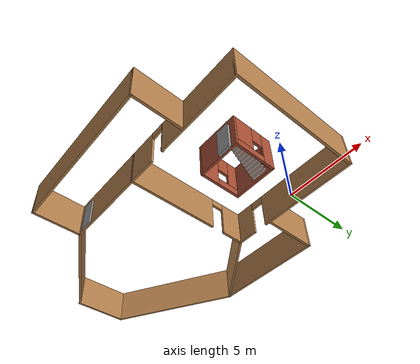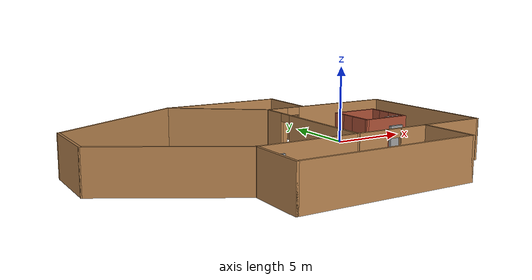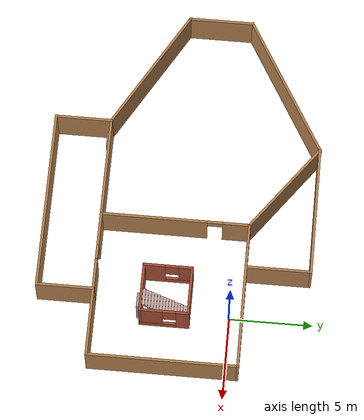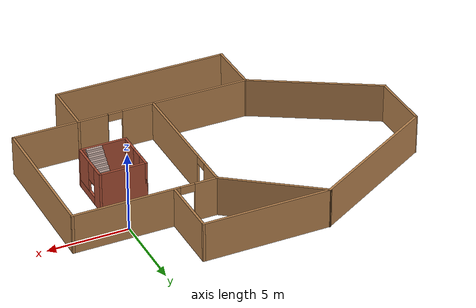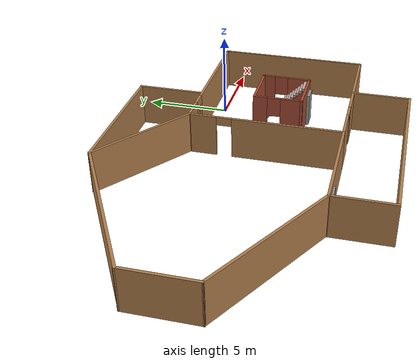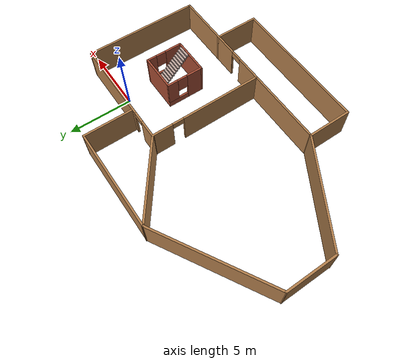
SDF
<?xml version='1.0'?>
<sdf version='1.6'>
  <model name='Building'>
    <pose frame=''>-7.3732 -3.38802 0 0 -0 0</pose>
    <link name='Door_1'>
      <collision name='Door_1_Collision'>
        <geometry>
          <box>
            <size>0.9 0.17 2</size>
          </box>
        </geometry>
        <pose frame=''>0 0 1 0 -0 0</pose>
      </collision>
      <visual name='Door_1_Visual'>
        <pose frame=''>0 0 1 0 -0 0</pose>
        <geometry>
          <box>
            <size>0.9 0.17 2</size>
          </box>
        </geometry>
        <material>
          <script>
            <uri>file://media/materials/scripts/gazebo.material</uri>
            <name>Gazebo/Grey</name>
          </script>
        </material>
      </visual>
      <pose frame=''>-2.80708 -4.7902 0 0 -0 0</pose>
    </link>
    <link name='Door_4'>
      <collision name='Door_4_Collision'>
        <geometry>
          <box>
            <size>0.9 0.17 2</size>
          </box>
        </geometry>
        <pose frame=''>0 0 1 0 -0 0</pose>
      </collision>
      <visual name='Door_4_Visual'>
        <pose frame=''>0 0 1 0 -0 0</pose>
        <geometry>
          <box>
            <size>0.9 0.17 2</size>
          </box>
        </geometry>
        <material>
          <script>
            <uri>file://media/materials/scripts/gazebo.material</uri>
            <name>Gazebo/Grey</name>
          </script>
        </material>
      </visual>
      <pose frame=''>7.32441 -2.01108 0 0 -0 0</pose>
    </link>
    <link name='Stairs_0'>
      <visual name='Stairs_0_Visual_0'>
        <pose frame=''>7.28923 0.709279 0.083333 0 -0 0</pose>
        <geometry>
          <box>
            <size>1 0.170012 0.166667</size>
          </box>
        </geometry>
        <material>
          <script>
            <uri>file://media/materials/scripts/gazebo.material</uri>
            <name>Gazebo/Grey</name>
          </script>
          <ambient>0.760784 0.662745 0.627451 1</ambient>
        </material>
        <meta>
          <layer>0</layer>
        </meta>
      </visual>
      <collision name='Stairs_0_Collision_0'>
        <geometry>
          <box>
            <size>1 0.170012 0.166667</size>
          </box>
        </geometry>
        <pose frame=''>7.28923 0.709279 0.083333 0 -0 0</pose>
      </collision>
      <visual name='Stairs_0_Visual_1'>
        <pose frame=''>7.28923 0.539268 0.25 0 -0 0</pose>
        <geometry>
          <box>
            <size>1 0.170012 0.166667</size>
          </box>
        </geometry>
        <material>
          <script>
            <uri>file://media/materials/scripts/gazebo.material</uri>
            <name>Gazebo/Grey</name>
          </script>
          <ambient>0.760784 0.662745 0.627451 1</ambient>
        </material>
        <meta>
          <layer>0</layer>
        </meta>
      </visual>
      <collision name='Stairs_0_Collision_1'>
        <geometry>
          <box>
            <size>1 0.170012 0.166667</size>
          </box>
        </geometry>
        <pose frame=''>7.28923 0.539268 0.25 0 -0 0</pose>
      </collision>
      <visual name='Stairs_0_Visual_2'>
        <pose frame=''>7.28923 0.369256 0.416667 0 -0 0</pose>
        <geometry>
          <box>
            <size>1 0.170012 0.166667</size>
          </box>
        </geometry>
        <material>
          <script>
            <uri>file://media/materials/scripts/gazebo.material</uri>
            <name>Gazebo/Grey</name>
          </script>
          <ambient>0.760784 0.662745 0.627451 1</ambient>
        </material>
        <meta>
          <layer>0</layer>
        </meta>
      </visual>
      <collision name='Stairs_0_Collision_2'>
        <geometry>
          <box>
            <size>1 0.170012 0.166667</size>
          </box>
        </geometry>
        <pose frame=''>7.28923 0.369256 0.416667 0 -0 0</pose>
      </collision>
      <visual name='Stairs_0_Visual_3'>
        <pose frame=''>7.28923 0.199244 0.583333 0 -0 0</pose>
        <geometry>
          <box>
            <size>1 0.170012 0.166667</size>
          </box>
        </geometry>
        <material>
          <script>
            <uri>file://media/materials/scripts/gazebo.material</uri>
            <name>Gazebo/Grey</name>
          </script>
          <ambient>0.760784 0.662745 0.627451 1</ambient>
        </material>
        <meta>
          <layer>0</layer>
        </meta>
      </visual>
      <collision name='Stairs_0_Collision_3'>
        <geometry>
          <box>
            <size>1 0.170012 0.166667</size>
          </box>
        </geometry>
        <pose frame=''>7.28923 0.199244 0.583333 0 -0 0</pose>
      </collision>
      <visual name='Stairs_0_Visual_4'>
        <pose frame=''>7.28923 0.029233 0.75 0 -0 0</pose>
        <geometry>
          <box>
            <size>1 0.170012 0.166667</size>
          </box>
        </geometry>
        <material>
          <script>
            <uri>file://media/materials/scripts/gazebo.material</uri>
            <name>Gazebo/Grey</name>
          </script>
          <ambient>0.760784 0.662745 0.627451 1</ambient>
        </material>
        <meta>
          <layer>0</layer>
        </meta>
      </visual>
      <collision name='Stairs_0_Collision_4'>
        <geometry>
          <box>
            <size>1 0.170012 0.166667</size>
          </box>
        </geometry>
        <pose frame=''>7.28923 0.029233 0.75 0 -0 0</pose>
      </collision>
      <visual name='Stairs_0_Visual_5'>
        <pose frame=''>7.28923 -0.140779 0.916667 0 -0 0</pose>
        <geometry>
          <box>
            <size>1 0.170012 0.166667</size>
          </box>
        </geometry>
        <material>
          <script>
            <uri>file://media/materials/scripts/gazebo.material</uri>
            <name>Gazebo/Grey</name>
          </script>
          <ambient>0.760784 0.662745 0.627451 1</ambient>
        </material>
        <meta>
          <layer>0</layer>
        </meta>
      </visual>
      <collision name='Stairs_0_Collision_5'>
        <geometry>
          <box>
            <size>1 0.170012 0.166667</size>
          </box>
        </geometry>
        <pose frame=''>7.28923 -0.140779 0.916667 0 -0 0</pose>
      </collision>
      <visual name='Stairs_0_Visual_6'>
        <pose frame=''>7.28923 -0.31079 1.08333 0 -0 0</pose>
        <geometry>
          <box>
            <size>1 0.170012 0.166667</size>
          </box>
        </geometry>
        <material>
          <script>
            <uri>file://media/materials/scripts/gazebo.material</uri>
            <name>Gazebo/Grey</name>
          </script>
          <ambient>0.760784 0.662745 0.627451 1</ambient>
        </material>
        <meta>
          <layer>0</layer>
        </meta>
      </visual>
      <collision name='Stairs_0_Collision_6'>
        <geometry>
          <box>
            <size>1 0.170012 0.166667</size>
          </box>
        </geometry>
        <pose frame=''>7.28923 -0.31079 1.08333 0 -0 0</pose>
      </collision>
      <visual name='Stairs_0_Visual_7'>
        <pose frame=''>7.28923 -0.480802 1.25 0 -0 0</pose>
        <geometry>
          <box>
            <size>1 0.170012 0.166667</size>
          </box>
        </geometry>
        <material>
          <script>
            <uri>file://media/materials/scripts/gazebo.material</uri>
            <name>Gazebo/Grey</name>
          </script>
          <ambient>0.760784 0.662745 0.627451 1</ambient>
        </material>
        <meta>
          <layer>0</layer>
        </meta>
      </visual>
      <collision name='Stairs_0_Collision_7'>
        <geometry>
          <box>
            <size>1 0.170012 0.166667</size>
          </box>
        </geometry>
        <pose frame=''>7.28923 -0.480802 1.25 0 -0 0</pose>
      </collision>
      <visual name='Stairs_0_Visual_8'>
        <pose frame=''>7.28923 -0.650813 1.41667 0 -0 0</pose>
        <geometry>
          <box>
            <size>1 0.170012 0.166667</size>
          </box>
        </geometry>
        <material>
          <script>
            <uri>file://media/materials/scripts/gazebo.material</uri>
            <name>Gazebo/Grey</name>
          </script>
          <ambient>0.760784 0.662745 0.627451 1</ambient>
        </material>
        <meta>
          <layer>0</layer>
        </meta>
      </visual>
      <collision name='Stairs_0_Collision_8'>
        <geometry>
          <box>
            <size>1 0.170012 0.166667</size>
          </box>
        </geometry>
        <pose frame=''>7.28923 -0.650813 1.41667 0 -0 0</pose>
      </collision>
      <visual name='Stairs_0_Visual_9'>
        <pose frame=''>7.28923 -0.820825 1.58333 0 -0 0</pose>
        <geometry>
          <box>
            <size>1 0.170012 0.166667</size>
          </box>
        </geometry>
        <material>
          <script>
            <uri>file://media/materials/scripts/gazebo.material</uri>
            <name>Gazebo/Grey</name>
          </script>
          <ambient>0.760784 0.662745 0.627451 1</ambient>
        </material>
        <meta>
          <layer>0</layer>
        </meta>
      </visual>
      <collision name='Stairs_0_Collision_9'>
        <geometry>
          <box>
            <size>1 0.170012 0.166667</size>
          </box>
        </geometry>
        <pose frame=''>7.28923 -0.820825 1.58333 0 -0 0</pose>
      </collision>
      <visual name='Stairs_0_Visual_10'>
        <pose frame=''>7.28923 -0.990836 1.75 0 -0 0</pose>
        <geometry>
          <box>
            <size>1 0.170012 0.166667</size>
          </box>
        </geometry>
        <material>
          <script>
            <uri>file://media/materials/scripts/gazebo.material</uri>
            <name>Gazebo/Grey</name>
          </script>
          <ambient>0.760784 0.662745 0.627451 1</ambient>
        </material>
        <meta>
          <layer>0</layer>
        </meta>
      </visual>
      <collision name='Stairs_0_Collision_10'>
        <geometry>
          <box>
            <size>1 0.170012 0.166667</size>
          </box>
        </geometry>
        <pose frame=''>7.28923 -0.990836 1.75 0 -0 0</pose>
      </collision>
      <visual name='Stairs_0_Visual_11'>
        <pose frame=''>7.28923 -1.16085 1.91667 0 -0 0</pose>
        <geometry>
          <box>
            <size>1 0.170012 0.166667</size>
          </box>
        </geometry>
        <material>
          <script>
            <uri>file://media/materials/scripts/gazebo.material</uri>
            <name>Gazebo/Grey</name>
          </script>
          <ambient>0.760784 0.662745 0.627451 1</ambient>
        </material>
        <meta>
          <layer>0</layer>
        </meta>
      </visual>
      <collision name='Stairs_0_Collision_11'>
        <geometry>
          <box>
            <size>1 0.170012 0.166667</size>
          </box>
        </geometry>
        <pose frame=''>7.28923 -1.16085 1.91667 0 -0 0</pose>
      </collision>
      <visual name='Stairs_0_Visual_12'>
        <pose frame=''>7.28923 -1.33086 2.08333 0 -0 0</pose>
        <geometry>
          <box>
            <size>1 0.170012 0.166667</size>
          </box>
        </geometry>
        <material>
          <script>
            <uri>file://media/materials/scripts/gazebo.material</uri>
            <name>Gazebo/Grey</name>
          </script>
          <ambient>0.760784 0.662745 0.627451 1</ambient>
        </material>
        <meta>
          <layer>0</layer>
        </meta>
      </visual>
      <collision name='Stairs_0_Collision_12'>
        <geometry>
          <box>
            <size>1 0.170012 0.166667</size>
          </box>
        </geometry>
        <pose frame=''>7.28923 -1.33086 2.08333 0 -0 0</pose>
      </collision>
      <visual name='Stairs_0_Visual_13'>
        <pose frame=''>7.28923 -1.50087 2.25 0 -0 0</pose>
        <geometry>
          <box>
            <size>1 0.170012 0.166667</size>
          </box>
        </geometry>
        <material>
          <script>
            <uri>file://media/materials/scripts/gazebo.material</uri>
            <name>Gazebo/Grey</name>
          </script>
          <ambient>0.760784 0.662745 0.627451 1</ambient>
        </material>
        <meta>
          <layer>0</layer>
        </meta>
      </visual>
      <collision name='Stairs_0_Collision_13'>
        <geometry>
          <box>
            <size>1 0.170012 0.166667</size>
          </box>
        </geometry>
        <pose frame=''>7.28923 -1.50087 2.25 0 -0 0</pose>
      </collision>
      <visual name='Stairs_0_Visual_14'>
        <pose frame=''>7.28923 -1.67088 2.41667 0 -0 0</pose>
        <geometry>
          <box>
            <size>1 0.170012 0.166667</size>
          </box>
        </geometry>
        <material>
          <script>
            <uri>file://media/materials/scripts/gazebo.material</uri>
            <name>Gazebo/Grey</name>
          </script>
          <ambient>0.760784 0.662745 0.627451 1</ambient>
        </material>
        <meta>
          <layer>0</layer>
        </meta>
      </visual>
      <collision name='Stairs_0_Collision_14'>
        <geometry>
          <box>
            <size>1 0.170012 0.166667</size>
          </box>
        </geometry>
        <pose frame=''>7.28923 -1.67088 2.41667 0 -0 0</pose>
      </collision>
    </link>
    <link name='Wall_0'>
      <collision name='Wall_0_Collision'>
        <geometry>
          <box>
            <size>3 0.15 2.5</size>
          </box>
        </geometry>
        <pose frame=''>0 0 1.25 0 -0 0</pose>
      </collision>
      <visual name='Wall_0_Visual'>
        <pose frame=''>0 0 1.25 0 -0 0</pose>
        <geometry>
          <box>
            <size>3 0.15 2.5</size>
          </box>
        </geometry>
        <material>
          <script>
            <uri>file://media/materials/scripts/gazebo.material</uri>
            <name>Gazebo/Bricks</name>
          </script>
          <ambient>1 1 1 1</ambient>
        </material>
        <meta>
          <layer>0</layer>
        </meta>
      </visual>
      <pose frame=''>6.6682 1.00802 0 0 -0 0</pose>
    </link>
    <link name='Wall_1'>
      <pose frame=''>8.0932 -0.416979 0 0 0 -1.5708</pose>
      <visual name='Wall_1_Visual_0'>
        <pose frame=''>-1.10278 0 1.25 0 -0 0</pose>
        <geometry>
          <box>
            <size>0.794446 0.15 2.5</size>
          </box>
        </geometry>
        <material>
          <script>
            <uri>file://media/materials/scripts/gazebo.material</uri>
            <name>Gazebo/Bricks</name>
          </script>
          <ambient>1 1 1 1</ambient>
        </material>
        <meta>
          <layer>0</layer>
        </meta>
      </visual>
      <collision name='Wall_1_Collision_0'>
        <geometry>
          <box>
            <size>0.794446 0.15 2.5</size>
          </box>
        </geometry>
        <pose frame=''>-1.10278 0 1.25 0 -0 0</pose>
      </collision>
      <visual name='Wall_1_Visual_1'>
        <pose frame=''>0.397223 0 0.25 0 -0 0</pose>
        <geometry>
          <box>
            <size>2.20555 0.15 0.5</size>
          </box>
        </geometry>
        <material>
          <script>
            <uri>file://media/materials/scripts/gazebo.material</uri>
            <name>Gazebo/Bricks</name>
          </script>
          <ambient>1 1 1 1</ambient>
        </material>
        <meta>
          <layer>0</layer>
        </meta>
      </visual>
      <collision name='Wall_1_Collision_1'>
        <geometry>
          <box>
            <size>2.20555 0.15 0.5</size>
          </box>
        </geometry>
        <pose frame=''>0.397223 0 0.25 0 -0 0</pose>
      </collision>
      <visual name='Wall_1_Visual_2'>
        <pose frame=''>0.797223 0 1.5 0 -0 0</pose>
        <geometry>
          <box>
            <size>1.40555 0.15 2</size>
          </box>
        </geometry>
        <material>
          <script>
            <uri>file://media/materials/scripts/gazebo.material</uri>
            <name>Gazebo/Bricks</name>
          </script>
          <ambient>1 1 1 1</ambient>
        </material>
        <meta>
          <layer>0</layer>
        </meta>
      </visual>
      <collision name='Wall_1_Collision_2'>
        <geometry>
          <box>
            <size>1.40555 0.15 2</size>
          </box>
        </geometry>
        <pose frame=''>0.797223 0 1.5 0 -0 0</pose>
      </collision>
      <visual name='Wall_1_Visual_3'>
        <pose frame=''>-0.305554 0 1.9 0 -0 0</pose>
        <geometry>
          <box>
            <size>0.8 0.15 1.2</size>
          </box>
        </geometry>
        <material>
          <script>
            <uri>file://media/materials/scripts/gazebo.material</uri>
            <name>Gazebo/Bricks</name>
          </script>
          <ambient>1 1 1 1</ambient>
        </material>
        <meta>
          <layer>0</layer>
        </meta>
      </visual>
      <collision name='Wall_1_Collision_3'>
        <geometry>
          <box>
            <size>0.8 0.15 1.2</size>
          </box>
        </geometry>
        <pose frame=''>-0.305554 0 1.9 0 -0 0</pose>
      </collision>
    </link>
    <link name='Wall_16'>
      <collision name='Wall_16_Collision'>
        <geometry>
          <box>
            <size>6 0.15 2.5</size>
          </box>
        </geometry>
        <pose frame=''>0 0 1.25 0 -0 0</pose>
      </collision>
      <visual name='Wall_16_Visual'>
        <pose frame=''>0 0 1.25 0 -0 0</pose>
        <geometry>
          <box>
            <size>6 0.15 2.5</size>
          </box>
        </geometry>
        <material>
          <script>
            <uri>file://media/materials/scripts/gazebo.material</uri>
            <name>Gazebo/Wood</name>
          </script>
          <ambient>1 1 1 1</ambient>
        </material>
        <meta>
          <layer>0</layer>
        </meta>
      </visual>
      <pose frame=''>8.1682 -4.69198 0 0 -0 0</pose>
    </link>
    <link name='Wall_17'>
      <collision name='Wall_17_Collision'>
        <geometry>
          <box>
            <size>9 0.15 2.5</size>
          </box>
        </geometry>
        <pose frame=''>0 0 1.25 0 -0 0</pose>
      </collision>
      <visual name='Wall_17_Visual'>
        <pose frame=''>0 0 1.25 0 -0 0</pose>
        <geometry>
          <box>
            <size>9 0.15 2.5</size>
          </box>
        </geometry>
        <material>
          <script>
            <uri>file://media/materials/scripts/gazebo.material</uri>
            <name>Gazebo/Wood</name>
          </script>
          <ambient>1 1 1 1</ambient>
        </material>
        <meta>
          <layer>0</layer>
        </meta>
      </visual>
      <pose frame=''>11.0932 -0.266979 0 0 -0 1.5708</pose>
    </link>
    <link name='Wall_18'>
      <pose frame=''>6.6682 4.15802 0 0 -0 3.14159</pose>
      <visual name='Wall_18_Visual_0'>
        <pose frame=''>-1.18488 0 1.25 0 -0 0</pose>
        <geometry>
          <box>
            <size>6.63023 0.15 2.5</size>
          </box>
        </geometry>
        <material>
          <script>
            <uri>file://media/materials/scripts/gazebo.material</uri>
            <name>Gazebo/Wood</name>
          </script>
          <ambient>1 1 1 1</ambient>
        </material>
        <meta>
          <layer>0</layer>
        </meta>
      </visual>
      <collision name='Wall_18_Collision_0'>
        <geometry>
          <box>
            <size>6.63023 0.15 2.5</size>
          </box>
        </geometry>
        <pose frame=''>-1.18488 0 1.25 0 -0 0</pose>
      </collision>
      <visual name='Wall_18_Visual_1'>
        <pose frame=''>3.76512 0 1.25 0 -0 0</pose>
        <geometry>
          <box>
            <size>1.46976 0.15 2.5</size>
          </box>
        </geometry>
        <material>
          <script>
            <uri>file://media/materials/scripts/gazebo.material</uri>
            <name>Gazebo/Wood</name>
          </script>
          <ambient>1 1 1 1</ambient>
        </material>
        <meta>
          <layer>0</layer>
        </meta>
      </visual>
      <collision name='Wall_18_Collision_1'>
        <geometry>
          <box>
            <size>1.46976 0.15 2.5</size>
          </box>
        </geometry>
        <pose frame=''>3.76512 0 1.25 0 -0 0</pose>
      </collision>
      <visual name='Wall_18_Visual_2'>
        <pose frame=''>2.58024 0 2.25 0 -0 0</pose>
        <geometry>
          <box>
            <size>0.9 0.15 0.5</size>
          </box>
        </geometry>
        <material>
          <script>
            <uri>file://media/materials/scripts/gazebo.material</uri>
            <name>Gazebo/Wood</name>
          </script>
          <ambient>1 1 1 1</ambient>
        </material>
        <meta>
          <layer>0</layer>
        </meta>
      </visual>
      <collision name='Wall_18_Collision_2'>
        <geometry>
          <box>
            <size>0.9 0.15 0.5</size>
          </box>
        </geometry>
        <pose frame=''>2.58024 0 2.25 0 -0 0</pose>
      </collision>
    </link>
    <link name='Wall_19'>
      <pose frame=''>2.2432 -0.266979 0 0 0 -1.5708</pose>
      <visual name='Wall_19_Visual_0'>
        <pose frame=''>-3.66091 0 1.25 0 -0 0</pose>
        <geometry>
          <box>
            <size>1.67818 0.15 2.5</size>
          </box>
        </geometry>
        <material>
          <script>
            <uri>file://media/materials/scripts/gazebo.material</uri>
            <name>Gazebo/Wood</name>
          </script>
          <ambient>1 1 1 1</ambient>
        </material>
        <meta>
          <layer>0</layer>
        </meta>
      </visual>
      <collision name='Wall_19_Collision_0'>
        <geometry>
          <box>
            <size>1.67818 0.15 2.5</size>
          </box>
        </geometry>
        <pose frame=''>-3.66091 0 1.25 0 -0 0</pose>
      </collision>
      <visual name='Wall_19_Visual_1'>
        <pose frame=''>1.28909 0 1.25 0 -0 0</pose>
        <geometry>
          <box>
            <size>6.42182 0.15 2.5</size>
          </box>
        </geometry>
        <material>
          <script>
            <uri>file://media/materials/scripts/gazebo.material</uri>
            <name>Gazebo/Wood</name>
          </script>
          <ambient>1 1 1 1</ambient>
        </material>
        <meta>
          <layer>0</layer>
        </meta>
      </visual>
      <collision name='Wall_19_Collision_1'>
        <geometry>
          <box>
            <size>6.42182 0.15 2.5</size>
          </box>
        </geometry>
        <pose frame=''>1.28909 0 1.25 0 -0 0</pose>
      </collision>
      <visual name='Wall_19_Visual_2'>
        <pose frame=''>-2.37182 0 2.25 0 -0 0</pose>
        <geometry>
          <box>
            <size>0.9 0.15 0.5</size>
          </box>
        </geometry>
        <material>
          <script>
            <uri>file://media/materials/scripts/gazebo.material</uri>
            <name>Gazebo/Wood</name>
          </script>
          <ambient>1 1 1 1</ambient>
        </material>
        <meta>
          <layer>0</layer>
        </meta>
      </visual>
      <collision name='Wall_19_Collision_2'>
        <geometry>
          <box>
            <size>0.9 0.15 0.5</size>
          </box>
        </geometry>
        <pose frame=''>-2.37182 0 2.25 0 -0 0</pose>
      </collision>
    </link>
    <link name='Wall_2'>
      <collision name='Wall_2_Collision'>
        <geometry>
          <box>
            <size>3 0.15 2.5</size>
          </box>
        </geometry>
        <pose frame=''>0 0 1.25 0 -0 0</pose>
      </collision>
      <visual name='Wall_2_Visual'>
        <pose frame=''>0 0 1.25 0 -0 0</pose>
        <geometry>
          <box>
            <size>3 0.15 2.5</size>
          </box>
        </geometry>
        <material>
          <script>
            <uri>file://media/materials/scripts/gazebo.material</uri>
            <name>Gazebo/Bricks</name>
          </script>
          <ambient>1 1 1 1</ambient>
        </material>
        <meta>
          <layer>0</layer>
        </meta>
      </visual>
      <pose frame=''>6.6682 -1.84198 0 0 -0 3.14159</pose>
    </link>
    <link name='Wall_20'>
      <pose frame=''>3.6682 -4.69198 0 0 -0 0</pose>
      <visual name='Wall_20_Visual_0'>
        <pose frame=''>-0.466098 0 1.25 0 -0 0</pose>
        <geometry>
          <box>
            <size>2.0678 0.15 2.5</size>
          </box>
        </geometry>
        <material>
          <script>
            <uri>file://media/materials/scripts/gazebo.material</uri>
            <name>Gazebo/Wood</name>
          </script>
          <ambient>1 1 1 1</ambient>
        </material>
        <meta>
          <layer>0</layer>
        </meta>
      </visual>
      <collision name='Wall_20_Collision_0'>
        <geometry>
          <box>
            <size>2.0678 0.15 2.5</size>
          </box>
        </geometry>
        <pose frame=''>-0.466098 0 1.25 0 -0 0</pose>
      </collision>
      <visual name='Wall_20_Visual_1'>
        <pose frame=''>1.4839 0 1.25 0 -0 0</pose>
        <geometry>
          <box>
            <size>0.032196 0.15 2.5</size>
          </box>
        </geometry>
        <material>
          <script>
            <uri>file://media/materials/scripts/gazebo.material</uri>
            <name>Gazebo/Wood</name>
          </script>
          <ambient>1 1 1 1</ambient>
        </material>
        <meta>
          <layer>0</layer>
        </meta>
      </visual>
      <collision name='Wall_20_Collision_1'>
        <geometry>
          <box>
            <size>0.032196 0.15 2.5</size>
          </box>
        </geometry>
        <pose frame=''>1.4839 0 1.25 0 -0 0</pose>
      </collision>
      <visual name='Wall_20_Visual_2'>
        <pose frame=''>1.0178 0 2.25 0 -0 0</pose>
        <geometry>
          <box>
            <size>0.9 0.15 0.5</size>
          </box>
        </geometry>
        <material>
          <script>
            <uri>file://media/materials/scripts/gazebo.material</uri>
            <name>Gazebo/Wood</name>
          </script>
          <ambient>1 1 1 1</ambient>
        </material>
        <meta>
          <layer>0</layer>
        </meta>
      </visual>
      <collision name='Wall_20_Collision_2'>
        <geometry>
          <box>
            <size>0.9 0.15 0.5</size>
          </box>
        </geometry>
        <pose frame=''>1.0178 0 2.25 0 -0 0</pose>
      </collision>
    </link>
    <link name='Wall_22'>
      <collision name='Wall_22_Collision'>
        <geometry>
          <box>
            <size>4 0.15 2.5</size>
          </box>
        </geometry>
        <pose frame=''>0 0 1.25 0 -0 0</pose>
      </collision>
      <visual name='Wall_22_Visual'>
        <pose frame=''>0 0 1.25 0 -0 0</pose>
        <geometry>
          <box>
            <size>4 0.15 2.5</size>
          </box>
        </geometry>
        <material>
          <script>
            <uri>file://media/materials/scripts/gazebo.material</uri>
            <name>Gazebo/Wood</name>
          </script>
          <ambient>1 1 1 1</ambient>
        </material>
        <meta>
          <layer>0</layer>
        </meta>
      </visual>
      <pose frame=''>4.88159 6.08505 0 0 -0 1.5708</pose>
    </link>
    <link name='Wall_23'>
      <collision name='Wall_23_Collision'>
        <geometry>
          <box>
            <size>8 0.15 2.5</size>
          </box>
        </geometry>
        <pose frame=''>0 0 1.25 0 -0 0</pose>
      </collision>
      <visual name='Wall_23_Visual'>
        <pose frame=''>0 0 1.25 0 -0 0</pose>
        <geometry>
          <box>
            <size>8 0.15 2.5</size>
          </box>
        </geometry>
        <material>
          <script>
            <uri>file://media/materials/scripts/gazebo.material</uri>
            <name>Gazebo/Wood</name>
          </script>
          <ambient>1 1 1 1</ambient>
        </material>
        <meta>
          <layer>0</layer>
        </meta>
      </visual>
      <pose frame=''>0.956593 8.01005 0 0 -0 3.14159</pose>
    </link>
    <link name='Wall_24'>
      <collision name='Wall_24_Collision'>
        <geometry>
          <box>
            <size>6.63066 0.15 2.5</size>
          </box>
        </geometry>
        <pose frame=''>0 0 1.25 0 -0 0</pose>
      </collision>
      <visual name='Wall_24_Visual'>
        <pose frame=''>0 0 1.25 0 -0 0</pose>
        <geometry>
          <box>
            <size>6.63066 0.15 2.5</size>
          </box>
        </geometry>
        <material>
          <script>
            <uri>file://media/materials/scripts/gazebo.material</uri>
            <name>Gazebo/Wood</name>
          </script>
          <ambient>1 1 1 1</ambient>
        </material>
        <meta>
          <layer>0</layer>
        </meta>
      </visual>
      <pose frame=''>-0.362605 6.08404 0 0 0 -0.636505</pose>
    </link>
    <link name='Wall_26'>
      <collision name='Wall_26_Collision'>
        <geometry>
          <box>
            <size>9.5 0.15 2.5</size>
          </box>
        </geometry>
        <pose frame=''>0 0 1.25 0 -0 0</pose>
      </collision>
      <visual name='Wall_26_Visual'>
        <pose frame=''>0 0 1.25 0 -0 0</pose>
        <geometry>
          <box>
            <size>9.5 0.15 2.5</size>
          </box>
        </geometry>
        <material>
          <script>
            <uri>file://media/materials/scripts/gazebo.material</uri>
            <name>Gazebo/Wood</name>
          </script>
          <ambient>1 1 1 1</ambient>
        </material>
        <meta>
          <layer>0</layer>
        </meta>
      </visual>
      <pose frame=''>-7.01708 5.67255 0 0 0 -2.61799</pose>
    </link>
    <link name='Wall_27'>
      <collision name='Wall_27_Collision'>
        <geometry>
          <box>
            <size>4 0.15 2.5</size>
          </box>
        </geometry>
        <pose frame=''>0 0 1.25 0 -0 0</pose>
      </collision>
      <visual name='Wall_27_Visual'>
        <pose frame=''>0 0 1.25 0 -0 0</pose>
        <geometry>
          <box>
            <size>4 0.15 2.5</size>
          </box>
        </geometry>
        <material>
          <script>
            <uri>file://media/materials/scripts/gazebo.material</uri>
            <name>Gazebo/Wood</name>
          </script>
          <ambient>1 1 1 1</ambient>
        </material>
        <meta>
          <layer>0</layer>
        </meta>
      </visual>
      <pose frame=''>-11.0657 1.41005 0 0 0 -1.5708</pose>
    </link>
    <link name='Wall_3'>
      <pose frame=''>5.2432 -0.416979 0 0 -0 1.5708</pose>
      <visual name='Wall_3_Visual_0'>
        <pose frame=''>-0.832402 0 1.25 0 -0 0</pose>
        <geometry>
          <box>
            <size>1.3352 0.15 2.5</size>
          </box>
        </geometry>
        <material>
          <script>
            <uri>file://media/materials/scripts/gazebo.material</uri>
            <name>Gazebo/Bricks</name>
          </script>
          <ambient>1 1 1 1</ambient>
        </material>
        <meta>
          <layer>0</layer>
        </meta>
      </visual>
      <collision name='Wall_3_Collision_0'>
        <geometry>
          <box>
            <size>1.3352 0.15 2.5</size>
          </box>
        </geometry>
        <pose frame=''>-0.832402 0 1.25 0 -0 0</pose>
      </collision>
      <visual name='Wall_3_Visual_1'>
        <pose frame=''>0.667598 0 0.25 0 -0 0</pose>
        <geometry>
          <box>
            <size>1.6648 0.15 0.5</size>
          </box>
        </geometry>
        <material>
          <script>
            <uri>file://media/materials/scripts/gazebo.material</uri>
            <name>Gazebo/Bricks</name>
          </script>
          <ambient>1 1 1 1</ambient>
        </material>
        <meta>
          <layer>0</layer>
        </meta>
      </visual>
      <collision name='Wall_3_Collision_1'>
        <geometry>
          <box>
            <size>1.6648 0.15 0.5</size>
          </box>
        </geometry>
        <pose frame=''>0.667598 0 0.25 0 -0 0</pose>
      </collision>
      <visual name='Wall_3_Visual_2'>
        <pose frame=''>1.0676 0 1.5 0 -0 0</pose>
        <geometry>
          <box>
            <size>0.864803 0.15 2</size>
          </box>
        </geometry>
        <material>
          <script>
            <uri>file://media/materials/scripts/gazebo.material</uri>
            <name>Gazebo/Bricks</name>
          </script>
          <ambient>1 1 1 1</ambient>
        </material>
        <meta>
          <layer>0</layer>
        </meta>
      </visual>
      <collision name='Wall_3_Collision_2'>
        <geometry>
          <box>
            <size>0.864803 0.15 2</size>
          </box>
        </geometry>
        <pose frame=''>1.0676 0 1.5 0 -0 0</pose>
      </collision>
      <visual name='Wall_3_Visual_3'>
        <pose frame=''>0.235197 0 1.9 0 -0 0</pose>
        <geometry>
          <box>
            <size>0.8 0.15 1.2</size>
          </box>
        </geometry>
        <material>
          <script>
            <uri>file://media/materials/scripts/gazebo.material</uri>
            <name>Gazebo/Bricks</name>
          </script>
          <ambient>1 1 1 1</ambient>
        </material>
        <meta>
          <layer>0</layer>
        </meta>
      </visual>
      <collision name='Wall_3_Collision_3'>
        <geometry>
          <box>
            <size>0.8 0.15 1.2</size>
          </box>
        </geometry>
        <pose frame=''>0.235197 0 1.9 0 -0 0</pose>
      </collision>
    </link>
    <link name='Wall_30'>
      <collision name='Wall_30_Collision'>
        <geometry>
          <box>
            <size>6.22763 0.15 2.5</size>
          </box>
        </geometry>
        <pose frame=''>0 0 1.25 0 -0 0</pose>
      </collision>
      <visual name='Wall_30_Visual'>
        <pose frame=''>0 0 1.25 0 -0 0</pose>
        <geometry>
          <box>
            <size>6.22763 0.15 2.5</size>
          </box>
        </geometry>
        <material>
          <script>
            <uri>file://media/materials/scripts/gazebo.material</uri>
            <name>Gazebo/Wood</name>
          </script>
          <ambient>1 1 1 1</ambient>
        </material>
        <meta>
          <layer>0</layer>
        </meta>
      </visual>
      <pose frame=''>-0.795617 -4.69096 0 0 -0 3.14126</pose>
    </link>
    <link name='Wall_32'>
      <collision name='Wall_32_Collision'>
        <geometry>
          <box>
            <size>8.5 0.15 2.5</size>
          </box>
        </geometry>
        <pose frame=''>0 0 1.25 0 -0 0</pose>
      </collision>
      <visual name='Wall_32_Visual'>
        <pose frame=''>0 0 1.25 0 -0 0</pose>
        <geometry>
          <box>
            <size>8.5 0.15 2.5</size>
          </box>
        </geometry>
        <material>
          <script>
            <uri>file://media/materials/scripts/gazebo.material</uri>
            <name>Gazebo/Wood</name>
          </script>
          <ambient>1 1 1 1</ambient>
        </material>
        <meta>
          <layer>0</layer>
        </meta>
      </visual>
      <pose frame=''>-7.45009 -2.60245 0 0 0 -0.523599</pose>
    </link>
    <link name='Wall_39'>
      <collision name='Wall_39_Collision'>
        <geometry>
          <box>
            <size>3.5 0.15 2.5</size>
          </box>
        </geometry>
        <pose frame=''>0 0 1.25 0 -0 0</pose>
      </collision>
      <visual name='Wall_39_Visual'>
        <pose frame=''>0 0 1.25 0 -0 0</pose>
        <geometry>
          <box>
            <size>3.5 0.15 2.5</size>
          </box>
        </geometry>
        <material>
          <script>
            <uri>file://media/materials/scripts/gazebo.material</uri>
            <name>Gazebo/Wood</name>
          </script>
          <ambient>1 1 1 1</ambient>
        </material>
        <meta>
          <layer>0</layer>
        </meta>
      </visual>
      <pose frame=''>-3.83443 -6.36495 0 0 0 -1.5708</pose>
    </link>
    <link name='Wall_40'>
      <collision name='Wall_40_Collision'>
        <geometry>
          <box>
            <size>11 0.15 2.5</size>
          </box>
        </geometry>
        <pose frame=''>0 0 1.25 0 -0 0</pose>
      </collision>
      <visual name='Wall_40_Visual'>
        <pose frame=''>0 0 1.25 0 -0 0</pose>
        <geometry>
          <box>
            <size>11 0.15 2.5</size>
          </box>
        </geometry>
        <material>
          <script>
            <uri>file://media/materials/scripts/gazebo.material</uri>
            <name>Gazebo/Wood</name>
          </script>
          <ambient>1 1 1 1</ambient>
        </material>
        <meta>
          <layer>0</layer>
        </meta>
      </visual>
      <pose frame=''>1.59057 -8.03995 0 0 -0 0</pose>
    </link>
    <link name='Wall_42'>
      <collision name='Wall_42_Collision'>
        <geometry>
          <box>
            <size>3.5 0.15 2.5</size>
          </box>
        </geometry>
        <pose frame=''>0 0 1.25 0 -0 0</pose>
      </collision>
      <visual name='Wall_42_Visual'>
        <pose frame=''>0 0 1.25 0 -0 0</pose>
        <geometry>
          <box>
            <size>3.5 0.15 2.5</size>
          </box>
        </geometry>
        <material>
          <script>
            <uri>file://media/materials/scripts/gazebo.material</uri>
            <name>Gazebo/Wood</name>
          </script>
          <ambient>1 1 1 1</ambient>
        </material>
        <meta>
          <layer>0</layer>
        </meta>
      </visual>
      <pose frame=''>7.01557 -6.36495 0 0 -0 1.5708</pose>
    </link>
    <static>1</static>
  </model>
</sdf>
